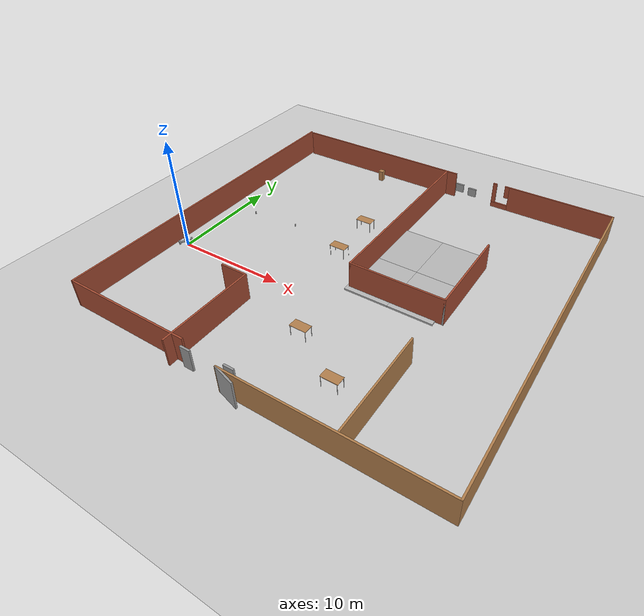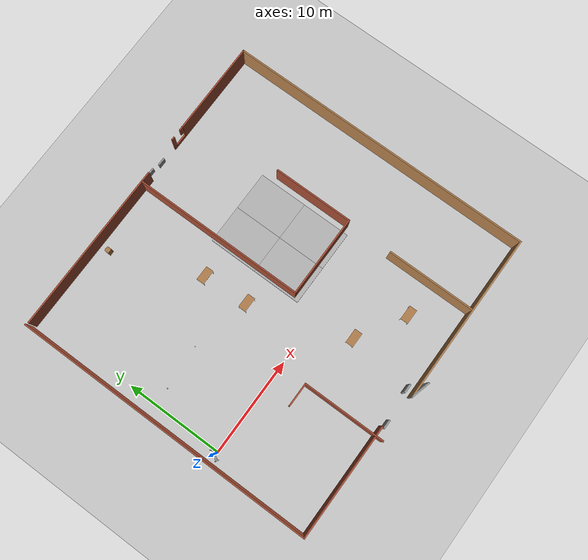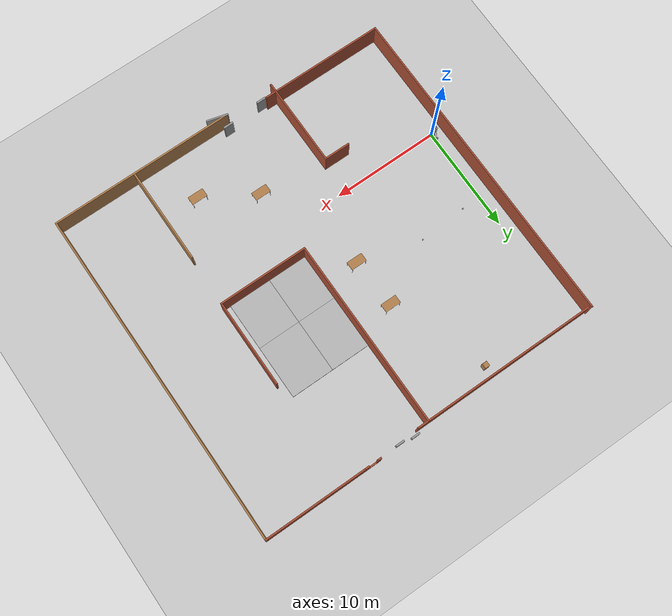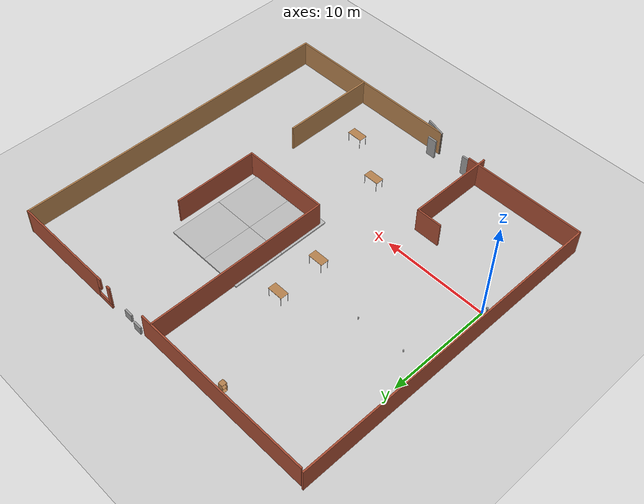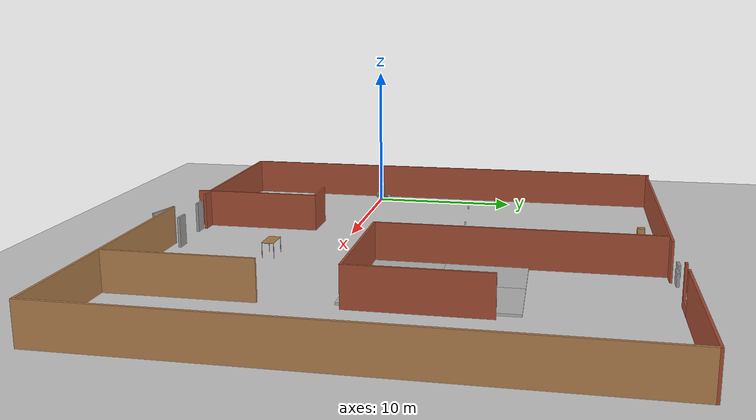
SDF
<sdf version="1.6">
 <world name="default">
  <plugin name="hello" filename="libhello.so"/>
  <light name="sun" type="directional">
   <pose>0 0 10 0 -0 0</pose>
   <diffuse>0.8 0.8 0.8 1</diffuse>
   <specular>0.2 0.2 0.2 1</specular>
   <attenuation>
    <range>1000</range>
    <constant>0.9</constant>
    <linear>0.01</linear>
    <quadratic>0.001</quadratic>
   </attenuation>
   <direction>-0.5 0.1 -0.9</direction>
  </light>
  <model name="ground_plane">
   <static>1</static>
   <link name="link">
    <collision name="collision">
     <geometry><plane><normal>0 0 1</normal><size>100 100</size></plane></geometry>
     <surface>
      <contact><collide_bitmask>65535</collide_bitmask></contact>
      <friction><ode><mu>100</mu><mu2>50</mu2></ode></friction>
     </surface>
    </collision>
    <visual name="visual">
     <cast_shadows>0</cast_shadows>
     <geometry><plane><normal>0 0 1</normal><size>100 100</size></plane></geometry>
     <material>
      <script><uri>file://media/materials/scripts/gazebo.material</uri><name>Gazebo/Grey</name></script>
     </material>
    </visual>
   </link>
  </model>
  <gravity>0 0 -9.8</gravity>
  <magnetic_field>6e-06 2.3e-05 -4.2e-05</magnetic_field>
  <atmosphere type="adiabatic"/>
  <physics name="default_physics" default="0" type="ode">
   <max_step_size>0.001</max_step_size>
   <real_time_factor>1</real_time_factor>
   <real_time_update_rate>1000</real_time_update_rate>
  </physics>
  <scene><ambient>0.4 0.4 0.4 1</ambient><background>0.7 0.7 0.7 1</background><shadows>1</shadows></scene>
  <spherical_coordinates>
   <surface_model>EARTH_WGS84</surface_model>
   <latitude_deg>0</latitude_deg>
   <longitude_deg>0</longitude_deg>
   <elevation>0</elevation>
   <heading_deg>0</heading_deg>
  </spherical_coordinates>
  <model name="model">
   <link name="link_0">
    <pose>0.013 0.013002 -0.240184 0 -0 0</pose>
    <inertial>
     <mass>1</mass>
     <inertia>
      <ixx>0.166667</ixx>
      <ixy>0</ixy>
      <ixz>0</ixz>
      <iyy>0.166667</iyy>
      <iyz>0</iyz>
      <izz>0.166667</izz>
     </inertia>
    </inertial>
    <visual name="visual">
     <geometry><box><size>0.2 1 0.1</size></box></geometry>
     <material>
      <lighting>1</lighting>
      <script><uri>file://media/materials/scripts/gazebo.material</uri><name>Gazebo/Grey</name></script>
      <shader type="pixel"><normal_map>__default__</normal_map></shader>
      <ambient>0.3 0.3 0.3 1</ambient>
      <diffuse>0.7 0.7 0.7 1</diffuse>
      <specular>0.01 0.01 0.01 1</specular>
      <emissive>0 0 0 1</emissive>
     </material>
    </visual>
    <collision name="collision">
     <geometry><box><size>0.2 1 0.1</size></box></geometry>
     <surface>
      <friction>
       <ode><mu>1</mu><mu2>1</mu2><fdir1>0 0 0</fdir1><slip1>0</slip1><slip2>0</slip2></ode>
       <torsional>
        <coefficient>1</coefficient>
        <patch_radius>0</patch_radius>
        <surface_radius>0</surface_radius>
        <use_patch_radius>1</use_patch_radius>
        <ode><slip>0</slip></ode>
       </torsional>
      </friction>
      <bounce><restitution_coefficient>0</restitution_coefficient><threshold>1e+06</threshold></bounce>
      <contact>
       <collide_without_contact>0</collide_without_contact>
       <collide_without_contact_bitmask>1</collide_without_contact_bitmask>
       <collide_bitmask>1</collide_bitmask>
       <ode>
        <soft_cfm>0</soft_cfm>
        <soft_erp>0.2</soft_erp>
        <kp>1e+13</kp>
        <kd>1</kd>
        <max_vel>0.01</max_vel>
        <min_depth>0</min_depth>
       </ode>
       <bullet>
        <split_impulse>1</split_impulse>
        <split_impulse_penetration_threshold>-0.01</split_impulse_penetration_threshold>
        <soft_cfm>0</soft_cfm>
        <soft_erp>0.2</soft_erp>
        <kp>1e+13</kp>
        <kd>1</kd>
       </bullet>
      </contact>
     </surface>
    </collision>
   </link>
   <link name="link_1">
    <pose>0.013 -0.537017 -0.240184 1.5707 -0 0</pose>
    <inertial>
     <mass>1</mass>
     <inertia><ixx>0.145833</ixx><ixy>0</ixy><ixz>0</ixz><iyy>0.145833</iyy><iyz>0</iyz><izz>0.125</izz></inertia>
    </inertial>
    <visual name="visual">
     <geometry><cylinder><radius>0.2</radius><length>0.1</length></cylinder></geometry>
     <material>
      <lighting>1</lighting>
      <script><uri>file://media/materials/scripts/gazebo.material</uri><name>Gazebo/Grey</name></script>
      <shader type="pixel"><normal_map>__default__</normal_map></shader>
      <ambient>0.3 0.3 0.3 1</ambient>
      <diffuse>0.7 0.7 0.7 1</diffuse>
      <specular>0.01 0.01 0.01 1</specular>
      <emissive>0 0 0 1</emissive>
     </material>
    </visual>
    <collision name="collision">
     <geometry><cylinder><radius>0.2</radius><length>0.1</length></cylinder></geometry>
     <surface>
      <friction>
       <ode><mu>1</mu><mu2>1</mu2><fdir1>0 0 0</fdir1><slip1>0</slip1><slip2>0</slip2></ode>
       <torsional>
        <coefficient>1</coefficient>
        <patch_radius>0</patch_radius>
        <surface_radius>0</surface_radius>
        <use_patch_radius>1</use_patch_radius>
        <ode><slip>0</slip></ode>
       </torsional>
      </friction>
      <bounce><restitution_coefficient>0</restitution_coefficient><threshold>1e+06</threshold></bounce>
      <contact>
       <collide_without_contact>0</collide_without_contact>
       <collide_without_contact_bitmask>1</collide_without_contact_bitmask>
       <collide_bitmask>1</collide_bitmask>
       <ode>
        <soft_cfm>0</soft_cfm>
        <soft_erp>0.2</soft_erp>
        <kp>1e+13</kp>
        <kd>1</kd>
        <max_vel>0.01</max_vel>
        <min_depth>0</min_depth>
       </ode>
       <bullet>
        <split_impulse>1</split_impulse>
        <split_impulse_penetration_threshold>-0.01</split_impulse_penetration_threshold>
        <soft_cfm>0</soft_cfm>
        <soft_erp>0.2</soft_erp>
        <kp>1e+13</kp>
        <kd>1</kd>
       </bullet>
      </contact>
     </surface>
    </collision>
   </link>
   <link name="link_1_clone">
    <pose>0.013 0.563021 -0.240184 1.5707 -0 0</pose>
    <inertial>
     <mass>1</mass>
     <inertia><ixx>0.145833</ixx><ixy>0</ixy><ixz>0</ixz><iyy>0.145833</iyy><iyz>0</iyz><izz>0.125</izz></inertia>
    </inertial>
    <visual name="visual">
     <geometry><cylinder><radius>0.2</radius><length>0.1</length></cylinder></geometry>
     <material>
      <lighting>1</lighting>
      <script><uri>file://media/materials/scripts/gazebo.material</uri><name>Gazebo/Grey</name></script>
      <shader type="pixel"><normal_map>__default__</normal_map></shader>
      <ambient>0.3 0.3 0.3 1</ambient>
      <diffuse>0.7 0.7 0.7 1</diffuse>
      <specular>0.01 0.01 0.01 1</specular>
      <emissive>0 0 0 1</emissive>
     </material>
    </visual>
    <collision name="collision">
     <geometry><cylinder><radius>0.2</radius><length>0.1</length></cylinder></geometry>
     <surface>
      <friction>
       <ode><mu>1</mu><mu2>1</mu2><fdir1>0 0 0</fdir1><slip1>0</slip1><slip2>0</slip2></ode>
       <torsional>
        <coefficient>1</coefficient>
        <patch_radius>0</patch_radius>
        <surface_radius>0</surface_radius>
        <use_patch_radius>1</use_patch_radius>
        <ode><slip>0</slip></ode>
       </torsional>
      </friction>
      <bounce><restitution_coefficient>0</restitution_coefficient><threshold>1e+06</threshold></bounce>
      <contact>
       <collide_without_contact>0</collide_without_contact>
       <collide_without_contact_bitmask>1</collide_without_contact_bitmask>
       <collide_bitmask>1</collide_bitmask>
       <ode>
        <soft_cfm>0</soft_cfm>
        <soft_erp>0.2</soft_erp>
        <kp>1e+13</kp>
        <kd>1</kd>
        <max_vel>0.01</max_vel>
        <min_depth>0</min_depth>
       </ode>
       <bullet>
        <split_impulse>1</split_impulse>
        <split_impulse_penetration_threshold>-0.01</split_impulse_penetration_threshold>
        <soft_cfm>0</soft_cfm>
        <soft_erp>0.2</soft_erp>
        <kp>1e+13</kp>
        <kd>1</kd>
       </bullet>
      </contact>
     </surface>
    </collision>
   </link>
   <link name="link_2">
    <pose>-0.032 -0.031998 0.2 -0.02 0 0</pose>
    <inertial>
     <mass>1</mass>
     <inertia>
      <ixx>0.166667</ixx>
      <ixy>0</ixy>
      <ixz>0</ixz>
      <iyy>0.166667</iyy>
      <iyz>0</iyz>
      <izz>0.166667</izz>
     </inertia>
    </inertial>
    <visual name="visual">
     <geometry><box><size>0.1 0.1 0.8</size></box></geometry>
     <material>
      <lighting>1</lighting>
      <script><uri>file://media/materials/scripts/gazebo.material</uri><name>Gazebo/Grey</name></script>
      <shader type="pixel"><normal_map>__default__</normal_map></shader>
      <ambient>0.3 0.3 0.3 1</ambient>
      <diffuse>0.7 0.7 0.7 1</diffuse>
      <specular>0.01 0.01 0.01 1</specular>
      <emissive>0 0 0 1</emissive>
     </material>
    </visual>
    <collision name="collision">
     <geometry><box><size>0.1 0.1 0.8</size></box></geometry>
     <surface>
      <friction>
       <ode><mu>1</mu><mu2>1</mu2><fdir1>0 0 0</fdir1><slip1>0</slip1><slip2>0</slip2></ode>
       <torsional>
        <coefficient>1</coefficient>
        <patch_radius>0</patch_radius>
        <surface_radius>0</surface_radius>
        <use_patch_radius>1</use_patch_radius>
        <ode><slip>0</slip></ode>
       </torsional>
      </friction>
      <bounce><restitution_coefficient>0</restitution_coefficient><threshold>1e+06</threshold></bounce>
      <contact>
       <collide_without_contact>0</collide_without_contact>
       <collide_without_contact_bitmask>1</collide_without_contact_bitmask>
       <collide_bitmask>1</collide_bitmask>
       <ode>
        <soft_cfm>0</soft_cfm>
        <soft_erp>0.2</soft_erp>
        <kp>1e+13</kp>
        <kd>1</kd>
        <max_vel>0.01</max_vel>
        <min_depth>0</min_depth>
       </ode>
       <bullet>
        <split_impulse>1</split_impulse>
        <split_impulse_penetration_threshold>-0.01</split_impulse_penetration_threshold>
        <soft_cfm>0</soft_cfm>
        <soft_erp>0.2</soft_erp>
        <kp>1e+13</kp>
        <kd>1</kd>
       </bullet>
      </contact>
     </surface>
    </collision>
   </link>
   <link name="link_3">
    <pose>-0.007 -0.007007 0.700736 0 -0 0</pose>
    <inertial>
     <mass>1</mass>
     <inertia><ixx>0.1</ixx><ixy>0</ixy><ixz>0</ixz><iyy>0.1</iyy><iyz>0</iyz><izz>0.1</izz></inertia>
    </inertial>
    <visual name="visual">
     <geometry><sphere><radius>0.1</radius></sphere></geometry>
     <material>
      <lighting>1</lighting>
      <script><uri>file://media/materials/scripts/gazebo.material</uri><name>Gazebo/Grey</name></script>
      <shader type="pixel"><normal_map>__default__</normal_map></shader>
      <ambient>0.3 0.3 0.3 1</ambient>
      <diffuse>0.7 0.7 0.7 1</diffuse>
      <specular>0.01 0.01 0.01 1</specular>
      <emissive>0 0 0 1</emissive>
     </material>
    </visual>
    <collision name="collision">
     <geometry><sphere><radius>0.1</radius></sphere></geometry>
     <surface>
      <friction>
       <ode><mu>1</mu><mu2>1</mu2><fdir1>0 0 0</fdir1><slip1>0</slip1><slip2>0</slip2></ode>
       <torsional>
        <coefficient>1</coefficient>
        <patch_radius>0</patch_radius>
        <surface_radius>0</surface_radius>
        <use_patch_radius>1</use_patch_radius>
        <ode><slip>0</slip></ode>
       </torsional>
      </friction>
      <bounce><restitution_coefficient>0</restitution_coefficient><threshold>1e+06</threshold></bounce>
      <contact>
       <collide_without_contact>0</collide_without_contact>
       <collide_without_contact_bitmask>1</collide_without_contact_bitmask>
       <collide_bitmask>1</collide_bitmask>
       <ode>
        <soft_cfm>0</soft_cfm>
        <soft_erp>0.2</soft_erp>
        <kp>1e+13</kp>
        <kd>1</kd>
        <max_vel>0.01</max_vel>
        <min_depth>0</min_depth>
       </ode>
       <bullet>
        <split_impulse>1</split_impulse>
        <split_impulse_penetration_threshold>-0.01</split_impulse_penetration_threshold>
        <soft_cfm>0</soft_cfm>
        <soft_erp>0.2</soft_erp>
        <kp>1e+13</kp>
        <kd>1</kd>
       </bullet>
      </contact>
     </surface>
    </collision>
   </link>
   <joint name="link_0_JOINT_0" type="revolute">
    <parent>link_0</parent>
    <child>link_1</child>
    <axis>
     <xyz>0 0 1</xyz>
     <use_parent_model_frame>0</use_parent_model_frame>
     <limit>
      <lower>-1.79769e+308</lower>
      <upper>1.79769e+308</upper>
      <effort>-1</effort>
      <velocity>-1</velocity>
     </limit>
     <dynamics>
      <spring_reference>0</spring_reference>
      <spring_stiffness>0</spring_stiffness>
      <damping>0</damping>
      <friction>0</friction>
     </dynamics>
    </axis>
    <physics>
     <ode><limit><cfm>0</cfm><erp>0.2</erp></limit><suspension><cfm>0</cfm><erp>0.2</erp></suspension></ode>
    </physics>
   </joint>
   <joint name="link_0_JOINT_1" type="revolute">
    <parent>link_0</parent>
    <child>link_1_clone</child>
    <axis>
     <xyz>0 0 1</xyz>
     <use_parent_model_frame>0</use_parent_model_frame>
     <limit>
      <lower>-1.79769e+308</lower>
      <upper>1.79769e+308</upper>
      <effort>-1</effort>
      <velocity>-1</velocity>
     </limit>
     <dynamics>
      <spring_reference>0</spring_reference>
      <spring_stiffness>0</spring_stiffness>
      <damping>0</damping>
      <friction>0</friction>
     </dynamics>
    </axis>
    <physics>
     <ode><limit><cfm>0</cfm><erp>0.2</erp></limit><suspension><cfm>0</cfm><erp>0.2</erp></suspension></ode>
    </physics>
   </joint>
   <joint name="link_0_JOINT_2" type="screw">
    <parent>link_0</parent>
    <child>link_2</child>
    <axis>
     <xyz>0 0 1</xyz>
     <use_parent_model_frame>0</use_parent_model_frame>
     <limit>
      <lower>-1.79769e+308</lower>
      <upper>1.79769e+308</upper>
      <effort>-1</effort>
      <velocity>-1</velocity>
     </limit>
     <dynamics>
      <spring_reference>0</spring_reference>
      <spring_stiffness>0</spring_stiffness>
      <damping>0</damping>
      <friction>0</friction>
     </dynamics>
    </axis>
    <physics>
     <ode><limit><cfm>0</cfm><erp>0.2</erp></limit><suspension><cfm>0</cfm><erp>0.2</erp></suspension></ode>
    </physics>
    <thread_pitch>1</thread_pitch>
   </joint>
   <joint name="link_2_JOINT_3" type="ball">
    <parent>link_2</parent>
    <child>link_3</child>
    <physics>
     <ode><limit><cfm>0</cfm><erp>0.2</erp></limit><suspension><cfm>0</cfm><erp>0.2</erp></suspension></ode>
    </physics>
   </joint>
   <static>0</static>
   <pose>-0.39733 0.089065 0.440189 0 0 -0.508393</pose>
  </model>
  <model name="model_0">
   <pose>15.172 4.5699 0 0 -0 0</pose>
   <link name="Door_0">
    <collision name="Door_0_Collision">
     <geometry><box><size>0.9 0.17 2</size></box></geometry>
     <pose>0 0 1 0 -0 0</pose>
    </collision>
    <visual name="Door_0_Visual">
     <pose>0 0 1 0 -0 0</pose>
     <geometry><box><size>0.9 0.17 2</size></box></geometry>
     <material>
      <script><uri>file://media/materials/scripts/gazebo.material</uri><name>Gazebo/Grey</name></script>
     </material>
    </visual>
    <pose>-0.625278 -14.8472 0 0 -0 0</pose>
   </link>
   <link name="Door_1">
    <collision name="Door_1_Collision">
     <geometry><box><size>0.9 0.17 2</size></box></geometry>
     <pose>0 0 1 0 -0 0</pose>
    </collision>
    <visual name="Door_1_Visual">
     <pose>0 0 1 0 -0 0</pose>
     <geometry><box><size>0.9 0.17 2</size></box></geometry>
     <material>
      <script><uri>file://media/materials/scripts/gazebo.material</uri><name>Gazebo/Grey</name></script>
     </material>
    </visual>
    <pose>-4.28411 -15.1701 0 0 -0 0</pose>
   </link>
   <link name="Wall_10">
    <collision name="Wall_10_Collision">
     <geometry><box><size>31.75 0.15 2.5</size></box></geometry>
     <pose>0 0 1.25 0 -0 0</pose>
    </collision>
    <visual name="Wall_10_Visual">
     <pose>0 0 1.25 0 -0 0</pose>
     <geometry><box><size>31.75 0.15 2.5</size></box></geometry>
     <material>
      <script><uri>file://media/materials/scripts/gazebo.material</uri><name>Gazebo/Wood</name></script>
      <ambient>1 1 1 1</ambient>
     </material>
     <meta><layer>0</layer></meta>
    </visual>
    <pose>16.3367 0.247834 0 0 -0 1.5708</pose>
   </link>
   <link name="Wall_11">
    <pose>10.7867 16.0478 0 0 -0 3.14159</pose>
    <visual name="Wall_11_Visual_0">
     <pose>-0.80391 0 1.25 0 -0 0</pose>
     <geometry><box><size>9.64218 0.15 2.5</size></box></geometry>
     <material>
      <script><uri>file://media/materials/scripts/gazebo.material</uri><name>Gazebo/Bricks</name></script>
      <ambient>1 1 1 1</ambient>
     </material>
     <meta><layer>0</layer></meta>
    </visual>
    <collision name="Wall_11_Collision_0">
     <geometry><box><size>9.64218 0.15 2.5</size></box></geometry>
     <pose>-0.80391 0 1.25 0 -0 0</pose>
    </collision>
    <visual name="Wall_11_Visual_1">
     <pose>4.82109 0 0.25 0 -0 0</pose>
     <geometry><box><size>1.60782 0.15 0.5</size></box></geometry>
     <material>
      <script><uri>file://media/materials/scripts/gazebo.material</uri><name>Gazebo/Bricks</name></script>
      <ambient>1 1 1 1</ambient>
     </material>
     <meta><layer>0</layer></meta>
    </visual>
    <collision name="Wall_11_Collision_1">
     <geometry><box><size>1.60782 0.15 0.5</size></box></geometry>
     <pose>4.82109 0 0.25 0 -0 0</pose>
    </collision>
    <visual name="Wall_11_Visual_2">
     <pose>5.43631 0 1.5 0 -0 0</pose>
     <geometry><box><size>0.377369 0.15 2</size></box></geometry>
     <material>
      <script><uri>file://media/materials/scripts/gazebo.material</uri><name>Gazebo/Bricks</name></script>
      <ambient>1 1 1 1</ambient>
     </material>
     <meta><layer>0</layer></meta>
    </visual>
    <collision name="Wall_11_Collision_2">
     <geometry><box><size>0.377369 0.15 2</size></box></geometry>
     <pose>5.43631 0 1.5 0 -0 0</pose>
    </collision>
    <visual name="Wall_11_Visual_3">
     <pose>4.2324 0 1.9 0 -0 0</pose>
     <geometry><box><size>0.43045 0.15 1.2</size></box></geometry>
     <material>
      <script><uri>file://media/materials/scripts/gazebo.material</uri><name>Gazebo/Bricks</name></script>
      <ambient>1 1 1 1</ambient>
     </material>
     <meta><layer>0</layer></meta>
    </visual>
    <collision name="Wall_11_Collision_3">
     <geometry><box><size>0.43045 0.15 1.2</size></box></geometry>
     <pose>4.2324 0 1.9 0 -0 0</pose>
    </collision>
   </link>
   <link name="Wall_13">
    <collision name="Wall_13_Collision">
     <geometry><box><size>17.5 0.15 2.5</size></box></geometry>
     <pose>0 0 1.25 0 -0 0</pose>
    </collision>
    <visual name="Wall_13_Visual">
     <pose>0 0 1.25 0 -0 0</pose>
     <geometry><box><size>17.5 0.15 2.5</size></box></geometry>
     <material>
      <script><uri>file://media/materials/scripts/gazebo.material</uri><name>Gazebo/Bricks</name></script>
      <ambient>1 1 1 1</ambient>
     </material>
     <meta><layer>0</layer></meta>
    </visual>
    <pose>-7.33889 15.8224 0 0 -0 0</pose>
   </link>
   <link name="Wall_15">
    <collision name="Wall_15_Collision">
     <geometry><box><size>17.75 0.15 2.5</size></box></geometry>
     <pose>0 0 1.25 0 -0 0</pose>
    </collision>
    <visual name="Wall_15_Visual">
     <pose>0 0 1.25 0 -0 0</pose>
     <geometry><box><size>17.75 0.15 2.5</size></box></geometry>
     <material>
      <script><uri>file://media/materials/scripts/gazebo.material</uri><name>Gazebo/Bricks</name></script>
      <ambient>1 1 1 1</ambient>
     </material>
     <meta><layer>0</layer></meta>
    </visual>
    <pose>0.343236 7.02236 0 0 0 -1.5708</pose>
   </link>
   <link name="Wall_16">
    <collision name="Wall_16_Collision">
     <geometry><box><size>8.5 0.15 2.5</size></box></geometry>
     <pose>0 0 1.25 0 -0 0</pose>
    </collision>
    <visual name="Wall_16_Visual">
     <pose>0 0 1.25 0 -0 0</pose>
     <geometry><box><size>8.5 0.15 2.5</size></box></geometry>
     <material>
      <script><uri>file://media/materials/scripts/gazebo.material</uri><name>Gazebo/Bricks</name></script>
      <ambient>1 1 1 1</ambient>
     </material>
     <meta><layer>0</layer></meta>
    </visual>
    <pose>4.51824 -1.77764 0 0 -0 0</pose>
   </link>
   <link name="Wall_17">
    <collision name="Wall_17_Collision">
     <geometry><box><size>0.15 0.15 2.5</size></box></geometry>
     <pose>0 0 1.25 0 -0 0</pose>
    </collision>
    <visual name="Wall_17_Visual">
     <pose>0 0 1.25 0 -0 0</pose>
     <geometry><box><size>0.15 0.15 2.5</size></box></geometry>
     <material>
      <script><uri>file://media/materials/scripts/gazebo.material</uri><name>Gazebo/Grey</name></script>
      <ambient>1 1 1 1</ambient>
     </material>
     <meta><layer>0</layer></meta>
    </visual>
    <pose>8.69324 -1.77764 0 0 -0 0</pose>
   </link>
   <link name="Wall_18">
    <collision name="Wall_18_Collision">
     <geometry><box><size>8.25 0.15 2.5</size></box></geometry>
     <pose>0 0 1.25 0 -0 0</pose>
    </collision>
    <visual name="Wall_18_Visual">
     <pose>0 0 1.25 0 -0 0</pose>
     <geometry><box><size>8.25 0.15 2.5</size></box></geometry>
     <material>
      <script><uri>file://media/materials/scripts/gazebo.material</uri><name>Gazebo/Bricks</name></script>
      <ambient>1 1 1 1</ambient>
     </material>
     <meta><layer>0</layer></meta>
    </visual>
    <pose>8.69324 2.27236 0 0 -0 1.5708</pose>
   </link>
   <link name="Wall_20">
    <collision name="Wall_20_Collision">
     <geometry><box><size>2.5 0.15 2.5</size></box></geometry>
     <pose>0 0 1.25 0 -0 0</pose>
    </collision>
    <visual name="Wall_20_Visual">
     <pose>0 0 1.25 0 -0 0</pose>
     <geometry><box><size>2.5 0.15 2.5</size></box></geometry>
     <material>
      <script><uri>file://media/materials/scripts/gazebo.material</uri><name>Gazebo/Bricks</name></script>
      <ambient>1 1 1 1</ambient>
     </material>
     <meta><layer>0</layer></meta>
    </visual>
    <pose>-6.87555 -7.31436 0 0 -0 0</pose>
   </link>
   <link name="Wall_21">
    <collision name="Wall_21_Collision">
     <geometry><box><size>8.5 0.15 2.5</size></box></geometry>
     <pose>0 0 1.25 0 -0 0</pose>
    </collision>
    <visual name="Wall_21_Visual">
     <pose>0 0 1.25 0 -0 0</pose>
     <geometry><box><size>8.5 0.15 2.5</size></box></geometry>
     <material>
      <script><uri>file://media/materials/scripts/gazebo.material</uri><name>Gazebo/Bricks</name></script>
      <ambient>1 1 1 1</ambient>
     </material>
     <meta><layer>0</layer></meta>
    </visual>
    <pose>-5.70055 -11.4894 0 0 0 -1.5708</pose>
   </link>
   <link name="Wall_23">
    <collision name="Wall_23_Collision">
     <geometry><box><size>9 0.15 2.5</size></box></geometry>
     <pose>0 0 1.25 0 -0 0</pose>
    </collision>
    <visual name="Wall_23_Visual">
     <pose>0 0 1.25 0 -0 0</pose>
     <geometry><box><size>9 0.15 2.5</size></box></geometry>
     <material>
      <script><uri>file://media/materials/scripts/gazebo.material</uri><name>Gazebo/Wood</name></script>
      <ambient>1 1 1 1</ambient>
     </material>
     <meta><layer>0</layer></meta>
    </visual>
    <pose>8.5218 -10.9861 0 0 0 -1.5708</pose>
   </link>
   <link name="Wall_3">
    <collision name="Wall_3_Collision">
     <geometry><box><size>31 0.15 2.5</size></box></geometry>
     <pose>0 0 1.25 0 -0 0</pose>
    </collision>
    <visual name="Wall_3_Visual">
     <pose>0 0 1.25 0 -0 0</pose>
     <geometry><box><size>31 0.15 2.5</size></box></geometry>
     <material>
      <script><uri>file://media/materials/scripts/gazebo.material</uri><name>Gazebo/Bricks</name></script>
      <ambient>1 1 1 1</ambient>
     </material>
     <meta><layer>0</layer></meta>
    </visual>
    <pose>-16.3367 0.504973 0 0 0 -1.5708</pose>
   </link>
   <link name="Wall_4">
    <collision name="Wall_4_Collision">
     <geometry><box><size>11.75 0.15 2.5</size></box></geometry>
     <pose>0 0 1.25 0 -0 0</pose>
    </collision>
    <visual name="Wall_4_Visual">
     <pose>0 0 1.25 0 -0 0</pose>
     <geometry><box><size>11.75 0.15 2.5</size></box></geometry>
     <material>
      <script><uri>file://media/materials/scripts/gazebo.material</uri><name>Gazebo/Bricks</name></script>
      <ambient>1 1 1 1</ambient>
     </material>
     <meta><layer>0</layer></meta>
    </visual>
    <pose>-10.5367 -14.92 0 0 -0 0</pose>
   </link>
   <link name="Wall_6">
    <collision name="Wall_6_Collision">
     <geometry><box><size>2 0.15 2.5</size></box></geometry>
     <pose>0 0 1.25 0 -0 0</pose>
    </collision>
    <visual name="Wall_6_Visual">
     <pose>0 0 1.25 0 -0 0</pose>
     <geometry><box><size>2 0.15 2.5</size></box></geometry>
     <material>
      <script><uri>file://media/materials/scripts/gazebo.material</uri><name>Gazebo/Grey</name></script>
      <ambient>1 1 1 1</ambient>
     </material>
     <meta><layer>0</layer></meta>
    </visual>
    <pose>-0.119795 -15.7916 0 0 -0 2.87979</pose>
   </link>
   <link name="Wall_9">
    <collision name="Wall_9_Collision">
     <geometry><box><size>17.5 0.15 2.5</size></box></geometry>
     <pose>0 0 1.25 0 -0 0</pose>
    </collision>
    <visual name="Wall_9_Visual">
     <pose>0 0 1.25 0 -0 0</pose>
     <geometry><box><size>17.5 0.15 2.5</size></box></geometry>
     <material>
      <script><uri>file://media/materials/scripts/gazebo.material</uri><name>Gazebo/Wood</name></script>
      <ambient>1 1 1 1</ambient>
     </material>
     <meta><layer>0</layer></meta>
    </visual>
    <pose>7.66172 -15.5522 0 0 -0 0</pose>
   </link>
   <link name="Window_3">
    <collision name="Window_3_Collision">
     <geometry><box><size>0.8 0.17 0.8</size></box></geometry>
     <pose>0 0 0.4 0 -0 0</pose>
    </collision>
    <visual name="Window_3_Visual">
     <pose>0 0 0.4 0 -0 0</pose>
     <geometry><box><size>0.8 0.17 0.8</size></box></geometry>
     <material>
      <script><uri>file://media/materials/scripts/gazebo.material</uri><name>Gazebo/Grey</name></script>
     </material>
    </visual>
    <pose>1.7422 16.1452 0.5 0 -0 0</pose>
   </link>
   <link name="Window_4">
    <collision name="Window_4_Collision">
     <geometry><box><size>0.8 0.17 0.8</size></box></geometry>
     <pose>0 0 0.4 0 -0 0</pose>
    </collision>
    <visual name="Window_4_Visual">
     <pose>0 0 0.4 0 -0 0</pose>
     <geometry><box><size>0.8 0.17 0.8</size></box></geometry>
     <material>
      <script><uri>file://media/materials/scripts/gazebo.material</uri><name>Gazebo/Grey</name></script>
     </material>
    </visual>
    <pose>3.14116 15.93 0.5 0 -0 0</pose>
   </link>
   <static>1</static>
  </model>
  <model name="beer">
   <link name="link">
    <pose>0 0 0.115 0 -0 0</pose>
    <inertial>
     <mass>0.39</mass>
     <inertia><ixx>0.00058</ixx><ixy>0</ixy><ixz>0</ixz><iyy>0.00058</iyy><iyz>0</iyz><izz>0.00019</izz></inertia>
    </inertial>
    <collision name="collision">
     <geometry><cylinder><radius>0.055</radius><length>0.23</length></cylinder></geometry>
    </collision>
    <visual name="visual">
     <geometry><cylinder><radius>0.055</radius><length>0.23</length></cylinder></geometry>
     <material>
      <script>
       <uri>model://beer/materials/scripts</uri>
       <uri>model://beer/materials/textures</uri>
       <name>Beer/Diffuse</name>
      </script>
     </material>
    </visual>
   </link>
   <pose>1.81072 7.12843 -2e-06 1e-06 0 -1.8e-05</pose>
  </model>
  <model name="beer_0">
   <link name="link">
    <pose>0 0 0.115 0 -0 0</pose>
    <inertial>
     <mass>0.39</mass>
     <inertia><ixx>0.00058</ixx><ixy>0</ixy><ixz>0</ixz><iyy>0.00058</iyy><iyz>0</iyz><izz>0.00019</izz></inertia>
    </inertial>
    <collision name="collision">
     <geometry><cylinder><radius>0.055</radius><length>0.23</length></cylinder></geometry>
    </collision>
    <visual name="visual">
     <geometry><cylinder><radius>0.055</radius><length>0.23</length></cylinder></geometry>
     <material>
      <script>
       <uri>model://beer/materials/scripts</uri>
       <uri>model://beer/materials/textures</uri>
       <name>Beer/Diffuse</name>
      </script>
     </material>
    </visual>
   </link>
   <pose>6.33245 7.42251 -7e-06 0 0 -1.7e-05</pose>
  </model>
  <model name="cabinet">
   <static>1</static>
   <link name="cabinet_bottom_plate">
    <inertial>
     <pose>0 0 -1 0 -0 0</pose>
     <inertia><ixx>2.05</ixx><ixy>0</ixy><ixz>0</ixz><iyy>2.05</iyy><iyz>0</iyz><izz>2.05</izz></inertia>
     <mass>25</mass>
    </inertial>
    <collision name="cabinet_bottom_plate_geom">
     <pose>0 0 0.01 0 -0 0</pose>
     <geometry><box><size>0.45 0.45 0.02</size></box></geometry>
    </collision>
    <visual name="cabinet_bottom_plate_geom_visual">
     <pose>0 0 0.01 0 -0 0</pose>
     <geometry><box><size>0.45 0.45 0.02</size></box></geometry>
     <material>
      <script><uri>file://media/materials/scripts/gazebo.material</uri><name>Gazebo/Wood</name></script>
     </material>
    </visual>
    <collision name="cabinet_bottom_plate_geom_cabinet_back_plate">
     <pose>0.235 0 0.51 0 -0 0</pose>
     <geometry><box><size>0.02 0.45 1.02</size></box></geometry>
    </collision>
    <visual name="cabinet_bottom_plate_geom_cabinet_back_plate_visual">
     <pose>0.235 0 0.51 0 -0 0</pose>
     <geometry><box><size>0.02 0.45 1.02</size></box></geometry>
     <material>
      <script><uri>file://media/materials/scripts/gazebo.material</uri><name>Gazebo/Wood</name></script>
     </material>
    </visual>
    <collision name="cabinet_bottom_plate_geom_cabinet_left_plate">
     <pose>0 0.235 0.51 0 -0 0</pose>
     <geometry><box><size>0.45 0.02 1.02</size></box></geometry>
    </collision>
    <visual name="cabinet_bottom_plate_geom_cabinet_left_plate_visual">
     <pose>0 0.235 0.51 0 -0 0</pose>
     <geometry><box><size>0.45 0.02 1.02</size></box></geometry>
     <material>
      <script><uri>file://media/materials/scripts/gazebo.material</uri><name>Gazebo/Wood</name></script>
     </material>
    </visual>
    <collision name="cabinet_bottom_plate_geom_cabinet_middle_plate">
     <pose>0 0 0.51 0 -0 0</pose>
     <geometry><box><size>0.45 0.45 0.02</size></box></geometry>
    </collision>
    <visual name="cabinet_bottom_plate_geom_cabinet_middle_plate_visual">
     <pose>0 0 0.51 0 -0 0</pose>
     <geometry><box><size>0.45 0.45 0.02</size></box></geometry>
     <material>
      <script><uri>file://media/materials/scripts/gazebo.material</uri><name>Gazebo/Wood</name></script>
     </material>
    </visual>
    <collision name="cabinet_bottom_plate_geom_cabinet_right_plate">
     <pose>0 -0.235 0.51 0 -0 0</pose>
     <geometry><box><size>0.45 0.02 1.02</size></box></geometry>
    </collision>
    <visual name="cabinet_bottom_plate_geom_cabinet_right_plate_visual">
     <pose>0 -0.235 0.51 0 -0 0</pose>
     <geometry><box><size>0.45 0.02 1.02</size></box></geometry>
     <material>
      <script><uri>file://media/materials/scripts/gazebo.material</uri><name>Gazebo/Wood</name></script>
     </material>
    </visual>
    <collision name="cabinet_bottom_plate_geom_cabinet_top_plate">
     <pose>0 0 1.01 0 -0 0</pose>
     <geometry><box><size>0.45 0.45 0.02</size></box></geometry>
    </collision>
    <visual name="cabinet_bottom_plate_geom_cabinet_top_plate_visual">
     <pose>0 0 1.01 0 -0 0</pose>
     <geometry><box><size>0.45 0.45 0.02</size></box></geometry>
     <material>
      <script><uri>file://media/materials/scripts/gazebo.material</uri><name>Gazebo/Wood</name></script>
     </material>
    </visual>
   </link>
   <pose>8.64221 19.3128 0 0 -0 0</pose>
  </model>
  <model name="mud_box">
   <static>1</static>
   <link name="link">
    <collision name="collision"><geometry><box><size>8 10 0.2</size></box></geometry></collision>
    <visual name="visual_1">
     <pose>-2 2.5 0 0 -0 0</pose>
     <cast_shadows>0</cast_shadows>
     <geometry><box><size>4 5 0.2</size></box></geometry>
     <material>
      <script>
       <uri>model://mud_box/materials/scripts</uri>
       <uri>model://mud_box/materials/textures</uri>
       <name>vrc/mud</name>
      </script>
     </material>
    </visual>
    <visual name="visual_2">
     <pose>2 2.5 0 0 -0 0</pose>
     <cast_shadows>0</cast_shadows>
     <geometry><box><size>4 5 0.2</size></box></geometry>
     <material>
      <script>
       <uri>model://mud_box/materials/scripts</uri>
       <uri>model://mud_box/materials/textures</uri>
       <name>vrc/mud</name>
      </script>
     </material>
    </visual>
    <visual name="visual_3">
     <pose>2 -2.5 0 0 -0 0</pose>
     <cast_shadows>0</cast_shadows>
     <geometry><box><size>4 5 0.2</size></box></geometry>
     <material>
      <script>
       <uri>model://mud_box/materials/scripts</uri>
       <uri>model://mud_box/materials/textures</uri>
       <name>vrc/mud</name>
      </script>
     </material>
    </visual>
    <visual name="visual_4">
     <pose>-2 -2.5 0 0 -0 0</pose>
     <cast_shadows>0</cast_shadows>
     <geometry><box><size>4 5 0.2</size></box></geometry>
     <material>
      <script>
       <uri>model://mud_box/materials/scripts</uri>
       <uri>model://mud_box/materials/textures</uri>
       <name>vrc/mud</name>
      </script>
     </material>
    </visual>
   </link>
   <pose>19.2397 7.27447 0 0 -0 0</pose>
  </model>
  <model name="table">
   <static>1</static>
   <link name="link">
    <collision name="surface">
     <pose>0 0 1 0 -0 0</pose>
     <geometry><box><size>1.5 0.8 0.03</size></box></geometry>
     <surface><friction><ode><mu>0.6</mu><mu2>0.6</mu2></ode></friction></surface>
    </collision>
    <visual name="visual1">
     <pose>0 0 1 0 -0 0</pose>
     <geometry><box><size>1.5 0.8 0.03</size></box></geometry>
     <material>
      <script><uri>file://media/materials/scripts/gazebo.material</uri><name>Gazebo/Wood</name></script>
     </material>
    </visual>
    <collision name="front_left_leg">
     <pose>0.68 0.38 0.5 0 -0 0</pose>
     <geometry><cylinder><radius>0.02</radius><length>1</length></cylinder></geometry>
    </collision>
    <visual name="front_left_leg">
     <pose>0.68 0.38 0.5 0 -0 0</pose>
     <geometry><cylinder><radius>0.02</radius><length>1</length></cylinder></geometry>
     <material>
      <script><uri>file://media/materials/scripts/gazebo.material</uri><name>Gazebo/Grey</name></script>
     </material>
    </visual>
    <collision name="front_right_leg">
     <pose>0.68 -0.38 0.5 0 -0 0</pose>
     <geometry><cylinder><radius>0.02</radius><length>1</length></cylinder></geometry>
    </collision>
    <visual name="front_right_leg">
     <pose>0.68 -0.38 0.5 0 -0 0</pose>
     <geometry><cylinder><radius>0.02</radius><length>1</length></cylinder></geometry>
     <material>
      <script><uri>file://media/materials/scripts/gazebo.material</uri><name>Gazebo/Grey</name></script>
     </material>
    </visual>
    <collision name="back_right_leg">
     <pose>-0.68 -0.38 0.5 0 -0 0</pose>
     <geometry><cylinder><radius>0.02</radius><length>1</length></cylinder></geometry>
    </collision>
    <visual name="back_right_leg">
     <pose>-0.68 -0.38 0.5 0 -0 0</pose>
     <geometry><cylinder><radius>0.02</radius><length>1</length></cylinder></geometry>
     <material>
      <script><uri>file://media/materials/scripts/gazebo.material</uri><name>Gazebo/Grey</name></script>
     </material>
    </visual>
    <collision name="back_left_leg">
     <pose>-0.68 0.38 0.5 0 -0 0</pose>
     <geometry><cylinder><radius>0.02</radius><length>1</length></cylinder></geometry>
    </collision>
    <visual name="back_left_leg">
     <pose>-0.68 0.38 0.5 0 -0 0</pose>
     <geometry><cylinder><radius>0.02</radius><length>1</length></cylinder></geometry>
     <material>
      <script><uri>file://media/materials/scripts/gazebo.material</uri><name>Gazebo/Grey</name></script>
     </material>
    </visual>
   </link>
   <pose>12.0925 10.5775 0 0 -0 0</pose>
  </model>
  <model name="table_clone">
   <static>1</static>
   <link name="link">
    <collision name="surface">
     <pose>0 0 1 0 -0 0</pose>
     <geometry><box><size>1.5 0.8 0.03</size></box></geometry>
     <surface><friction><ode><mu>0.6</mu><mu2>0.6</mu2></ode></friction></surface>
    </collision>
    <visual name="visual1">
     <pose>0 0 1 0 -0 0</pose>
     <geometry><box><size>1.5 0.8 0.03</size></box></geometry>
     <material>
      <script><uri>file://media/materials/scripts/gazebo.material</uri><name>Gazebo/Wood</name></script>
     </material>
    </visual>
    <collision name="front_left_leg">
     <pose>0.68 0.38 0.5 0 -0 0</pose>
     <geometry><cylinder><radius>0.02</radius><length>1</length></cylinder></geometry>
    </collision>
    <visual name="front_left_leg">
     <pose>0.68 0.38 0.5 0 -0 0</pose>
     <geometry><cylinder><radius>0.02</radius><length>1</length></cylinder></geometry>
     <material>
      <script><uri>file://media/materials/scripts/gazebo.material</uri><name>Gazebo/Grey</name></script>
     </material>
    </visual>
    <collision name="front_right_leg">
     <pose>0.68 -0.38 0.5 0 -0 0</pose>
     <geometry><cylinder><radius>0.02</radius><length>1</length></cylinder></geometry>
    </collision>
    <visual name="front_right_leg">
     <pose>0.68 -0.38 0.5 0 -0 0</pose>
     <geometry><cylinder><radius>0.02</radius><length>1</length></cylinder></geometry>
     <material>
      <script><uri>file://media/materials/scripts/gazebo.material</uri><name>Gazebo/Grey</name></script>
     </material>
    </visual>
    <collision name="back_right_leg">
     <pose>-0.68 -0.38 0.5 0 -0 0</pose>
     <geometry><cylinder><radius>0.02</radius><length>1</length></cylinder></geometry>
    </collision>
    <visual name="back_right_leg">
     <pose>-0.68 -0.38 0.5 0 -0 0</pose>
     <geometry><cylinder><radius>0.02</radius><length>1</length></cylinder></geometry>
     <material>
      <script><uri>file://media/materials/scripts/gazebo.material</uri><name>Gazebo/Grey</name></script>
     </material>
    </visual>
    <collision name="back_left_leg">
     <pose>-0.68 0.38 0.5 0 -0 0</pose>
     <geometry><cylinder><radius>0.02</radius><length>1</length></cylinder></geometry>
    </collision>
    <visual name="back_left_leg">
     <pose>-0.68 0.38 0.5 0 -0 0</pose>
     <geometry><cylinder><radius>0.02</radius><length>1</length></cylinder></geometry>
     <material>
      <script><uri>file://media/materials/scripts/gazebo.material</uri><name>Gazebo/Grey</name></script>
     </material>
    </visual>
   </link>
   <pose>12.3208 5.94342 0 0 -0 0</pose>
  </model>
  <model name="table_clone_clone">
   <static>1</static>
   <link name="link">
    <collision name="surface">
     <pose>0 0 1 0 -0 0</pose>
     <geometry><box><size>1.5 0.8 0.03</size></box></geometry>
     <surface><friction><ode><mu>0.6</mu><mu2>0.6</mu2></ode></friction></surface>
    </collision>
    <visual name="visual1">
     <pose>0 0 1 0 -0 0</pose>
     <geometry><box><size>1.5 0.8 0.03</size></box></geometry>
     <material>
      <script><uri>file://media/materials/scripts/gazebo.material</uri><name>Gazebo/Wood</name></script>
     </material>
    </visual>
    <collision name="front_left_leg">
     <pose>0.68 0.38 0.5 0 -0 0</pose>
     <geometry><cylinder><radius>0.02</radius><length>1</length></cylinder></geometry>
    </collision>
    <visual name="front_left_leg">
     <pose>0.68 0.38 0.5 0 -0 0</pose>
     <geometry><cylinder><radius>0.02</radius><length>1</length></cylinder></geometry>
     <material>
      <script><uri>file://media/materials/scripts/gazebo.material</uri><name>Gazebo/Grey</name></script>
     </material>
    </visual>
    <collision name="front_right_leg">
     <pose>0.68 -0.38 0.5 0 -0 0</pose>
     <geometry><cylinder><radius>0.02</radius><length>1</length></cylinder></geometry>
    </collision>
    <visual name="front_right_leg">
     <pose>0.68 -0.38 0.5 0 -0 0</pose>
     <geometry><cylinder><radius>0.02</radius><length>1</length></cylinder></geometry>
     <material>
      <script><uri>file://media/materials/scripts/gazebo.material</uri><name>Gazebo/Grey</name></script>
     </material>
    </visual>
    <collision name="back_right_leg">
     <pose>-0.68 -0.38 0.5 0 -0 0</pose>
     <geometry><cylinder><radius>0.02</radius><length>1</length></cylinder></geometry>
    </collision>
    <visual name="back_right_leg">
     <pose>-0.68 -0.38 0.5 0 -0 0</pose>
     <geometry><cylinder><radius>0.02</radius><length>1</length></cylinder></geometry>
     <material>
      <script><uri>file://media/materials/scripts/gazebo.material</uri><name>Gazebo/Grey</name></script>
     </material>
    </visual>
    <collision name="back_left_leg">
     <pose>-0.68 0.38 0.5 0 -0 0</pose>
     <geometry><cylinder><radius>0.02</radius><length>1</length></cylinder></geometry>
    </collision>
    <visual name="back_left_leg">
     <pose>-0.68 0.38 0.5 0 -0 0</pose>
     <geometry><cylinder><radius>0.02</radius><length>1</length></cylinder></geometry>
     <material>
      <script><uri>file://media/materials/scripts/gazebo.material</uri><name>Gazebo/Grey</name></script>
     </material>
    </visual>
   </link>
   <pose>20.2441 -6.65973 0 0 -0 0</pose>
  </model>
  <model name="table_clone_clone_0">
   <static>1</static>
   <link name="link">
    <collision name="surface">
     <pose>0 0 1 0 -0 0</pose>
     <geometry><box><size>1.5 0.8 0.03</size></box></geometry>
     <surface><friction><ode><mu>0.6</mu><mu2>0.6</mu2></ode></friction></surface>
    </collision>
    <visual name="visual1">
     <pose>0 0 1 0 -0 0</pose>
     <geometry><box><size>1.5 0.8 0.03</size></box></geometry>
     <material>
      <script><uri>file://media/materials/scripts/gazebo.material</uri><name>Gazebo/Wood</name></script>
     </material>
    </visual>
    <collision name="front_left_leg">
     <pose>0.68 0.38 0.5 0 -0 0</pose>
     <geometry><cylinder><radius>0.02</radius><length>1</length></cylinder></geometry>
    </collision>
    <visual name="front_left_leg">
     <pose>0.68 0.38 0.5 0 -0 0</pose>
     <geometry><cylinder><radius>0.02</radius><length>1</length></cylinder></geometry>
     <material>
      <script><uri>file://media/materials/scripts/gazebo.material</uri><name>Gazebo/Grey</name></script>
     </material>
    </visual>
    <collision name="front_right_leg">
     <pose>0.68 -0.38 0.5 0 -0 0</pose>
     <geometry><cylinder><radius>0.02</radius><length>1</length></cylinder></geometry>
    </collision>
    <visual name="front_right_leg">
     <pose>0.68 -0.38 0.5 0 -0 0</pose>
     <geometry><cylinder><radius>0.02</radius><length>1</length></cylinder></geometry>
     <material>
      <script><uri>file://media/materials/scripts/gazebo.material</uri><name>Gazebo/Grey</name></script>
     </material>
    </visual>
    <collision name="back_right_leg">
     <pose>-0.68 -0.38 0.5 0 -0 0</pose>
     <geometry><cylinder><radius>0.02</radius><length>1</length></cylinder></geometry>
    </collision>
    <visual name="back_right_leg">
     <pose>-0.68 -0.38 0.5 0 -0 0</pose>
     <geometry><cylinder><radius>0.02</radius><length>1</length></cylinder></geometry>
     <material>
      <script><uri>file://media/materials/scripts/gazebo.material</uri><name>Gazebo/Grey</name></script>
     </material>
    </visual>
    <collision name="back_left_leg">
     <pose>-0.68 0.38 0.5 0 -0 0</pose>
     <geometry><cylinder><radius>0.02</radius><length>1</length></cylinder></geometry>
    </collision>
    <visual name="back_left_leg">
     <pose>-0.68 0.38 0.5 0 -0 0</pose>
     <geometry><cylinder><radius>0.02</radius><length>1</length></cylinder></geometry>
     <material>
      <script><uri>file://media/materials/scripts/gazebo.material</uri><name>Gazebo/Grey</name></script>
     </material>
    </visual>
   </link>
   <pose>15.5232 -3.8592 0 0 -0 0</pose>
  </model>
  <model name="my_ball">
   <link name="link_0">
    <inertial>
     <mass>1</mass>
     <inertia><ixx>0.1</ixx><ixy>0</ixy><ixz>0</ixz><iyy>0.1</iyy><iyz>0</iyz><izz>0.1</izz></inertia>
    </inertial>
    <visual name="visual">
     <geometry><sphere><radius>0.1</radius></sphere></geometry>
     <material>
      <lighting>1</lighting>
      <script><uri>file://media/materials/scripts/gazebo.material</uri><name>Gazebo/Grey</name></script>
      <shader type="pixel"><normal_map>__default__</normal_map></shader>
      <ambient>1 1 1 1</ambient>
      <diffuse>1 1 1 1</diffuse>
      <specular>1 1 1 1</specular>
      <emissive>1 1 1 1</emissive>
     </material>
    </visual>
    <collision name="collision">
     <geometry><sphere><radius>0.1</radius></sphere></geometry>
     <surface>
      <friction>
       <ode><mu>1</mu><mu2>1</mu2><fdir1>0 0 0</fdir1><slip1>0</slip1><slip2>0</slip2></ode>
       <torsional>
        <coefficient>1</coefficient>
        <patch_radius>0</patch_radius>
        <surface_radius>0</surface_radius>
        <use_patch_radius>1</use_patch_radius>
        <ode><slip>0</slip></ode>
       </torsional>
      </friction>
      <bounce><restitution_coefficient>0</restitution_coefficient><threshold>1e+06</threshold></bounce>
      <contact>
       <collide_without_contact>0</collide_without_contact>
       <collide_without_contact_bitmask>1</collide_without_contact_bitmask>
       <collide_bitmask>1</collide_bitmask>
       <ode>
        <soft_cfm>0</soft_cfm>
        <soft_erp>0.2</soft_erp>
        <kp>1e+13</kp>
        <kd>1</kd>
        <max_vel>0.01</max_vel>
        <min_depth>0</min_depth>
       </ode>
       <bullet>
        <split_impulse>1</split_impulse>
        <split_impulse_penetration_threshold>-0.01</split_impulse_penetration_threshold>
        <soft_cfm>0</soft_cfm>
        <soft_erp>0.2</soft_erp>
        <kp>1e+13</kp>
        <kd>1</kd>
       </bullet>
      </contact>
     </surface>
    </collision>
   </link>
   <static>0</static>
   <pose>0.915234 -0.001093 0.1 0 -0 0</pose>
  </model>
 </world>
</sdf>
